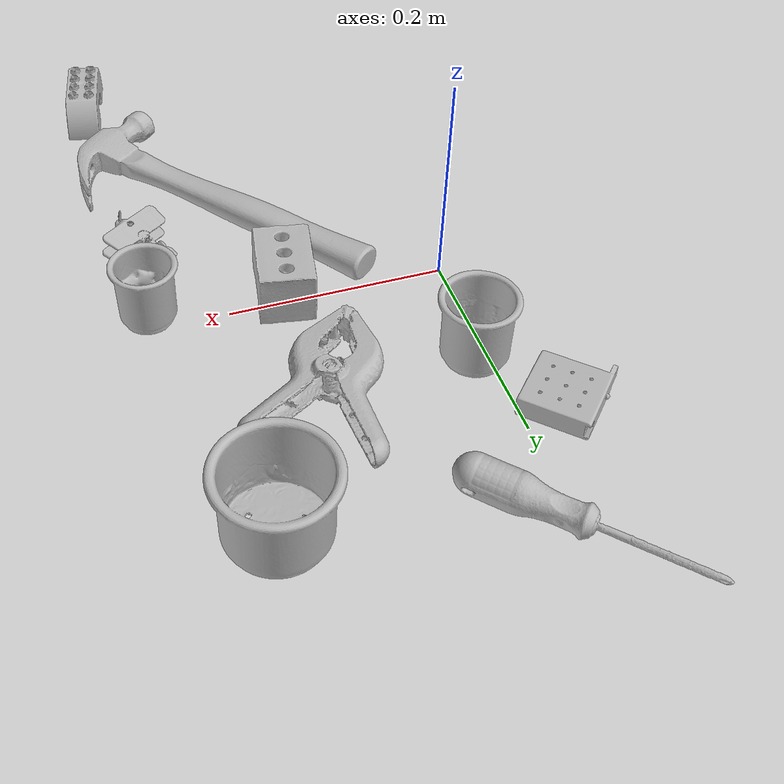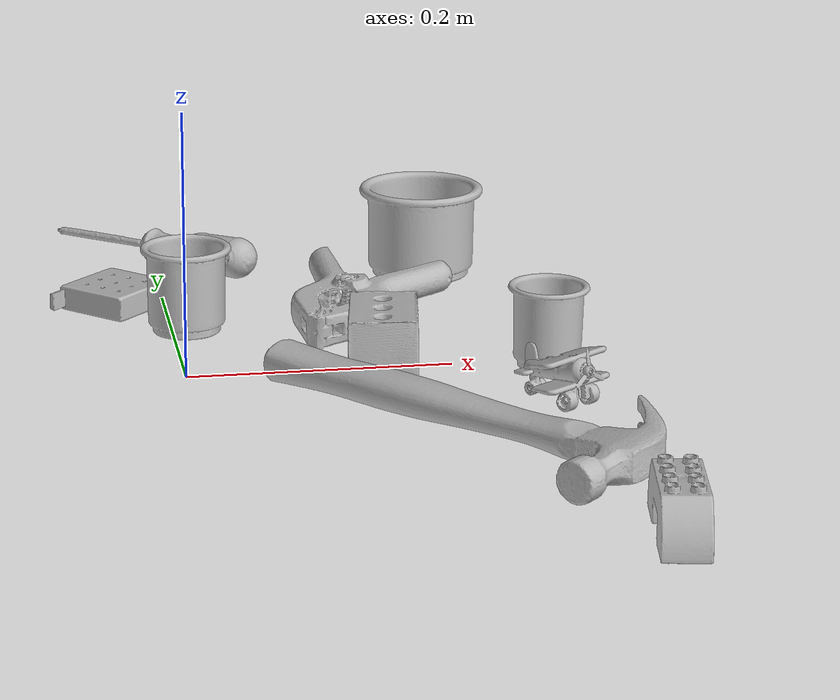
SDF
<sdf version="1.4">
  <world name="default">
    <light name="light1" type="point">
      <pose>0 0 1 0 0 0</pose>
      <diffuse>3 3 3 1</diffuse>
      <specular>3 3 3 1</specular>
    </light>
    <light name="light2" type="point">
      <pose>0 0.5 2 0 0 0</pose>
      <diffuse>1 1 1 1</diffuse>
      <specular>1 1 1 1</specular>
    </light>
    <light name="light3" type="point">
      <pose>0 0.5 2 0 0 0</pose>
      <diffuse>3 3 3 1</diffuse>
      <specular>3 3 3 1</specular>
    </light>
    <scene>
      <ambient>0.7 0.7 0.7</ambient>
    </scene>
    <model name="cup1">
      <link name="link_cup1">
        <collision name="default">
          <geometry>
            <mesh>
              <uri>model://j_cups/collision_meshes/collision.obj</uri>
              <scale>1.0 1.0 1.0</scale>
            </mesh>
          </geometry>
          <surface>
            <friction>
              <ode>
                <mu>0.5</mu>
                <mu2>0.5</mu2>
              </ode>
            </friction>
          <contact>
        <ode>
            <max_vel>0</max_vel>
            <min_depth>0.0001</min_depth>
            <kp>1e8</kp>
        </ode>
    </contact></surface>
        </collision>
        <visual name="default">
          <geometry>
            <mesh>
              <uri>model://j_cups/visual_meshes/visual.dae</uri>
              <scale>1.0 1.0 1.0</scale>
            </mesh>
          </geometry>
        </visual>
        <inertial>
          <mass>0.1112113818526268</mass>
          <pose>0.0006164852529764175 0.0005398975918069482 -0.0013479019980877638 0.030303955005909274 0.03757984422505388 0.4386955526072484</pose>
          <inertia>
            <ixx>0.00016329347</ixx>
            <iyy>0.00016499148</iyy>
            <izz>0.00018824349</izz>
            <ixy>0</ixy>
            <ixz>0</ixz>
            <iyz>0</iyz>
          </inertia>
        </inertial>
      </link>
      <pose>0.22156603634357452 0.24047210812568665 0.037988994270563126 1.1805086073197432e-09 -6.451120253084784e-07 -0.12066284009372619</pose>
    </model>
    <model name="cup2">
      <link name="link_cup2">
        <collision name="default">
          <geometry>
            <mesh>
              <uri>model://b_cups/collision_meshes/collision.obj</uri>
              <scale>1.0 1.0 1.0</scale>
            </mesh>
          </geometry>
          <surface>
            <friction>
              <ode>
                <mu>0.5</mu>
                <mu2>0.5</mu2>
              </ode>
            </friction>
          <contact>
        <ode>
            <max_vel>0</max_vel>
            <min_depth>0.0001</min_depth>
            <kp>1e8</kp>
        </ode>
    </contact></surface>
        </collision>
        <visual name="default">
          <geometry>
            <mesh>
              <uri>model://b_cups/visual_meshes/visual.dae</uri>
              <scale>1.0 1.0 1.0</scale>
            </mesh>
          </geometry>
        </visual>
        <inertial>
          <mass>0.040588438510894775</mass>
          <pose>0.0005182006862014532 0.001805859268642962 -0.001338181202299893 0.11356319114734177 0.03872522211554688 -0.34569586720892936</pose>
          <inertia>
            <ixx>2.6567977e-05</ixx>
            <iyy>2.6063572e-05</iyy>
            <izz>2.235645e-05</izz>
            <ixy>0</ixy>
            <ixz>0</ixz>
            <iyz>0</iyz>
          </inertia>
        </inertial>
      </link>
      <pose>0.26945269107818604 -0.015931304544210434 0.031996265053749084 -0.00762412243439389 -0.0038737189181310837 -2.607656302328686</pose>
    </model>
    <model name="cup3">
      <link name="link_cup3">
        <collision name="default">
          <geometry>
            <mesh>
              <uri>model://d_cups/collision_meshes/collision.obj</uri>
              <scale>1.0 1.0 1.0</scale>
            </mesh>
          </geometry>
          <surface>
            <friction>
              <ode>
                <mu>0.5</mu>
                <mu2>0.5</mu2>
              </ode>
            </friction>
          <contact>
        <ode>
            <max_vel>0</max_vel>
            <min_depth>0.0001</min_depth>
            <kp>1e8</kp>
        </ode>
    </contact></surface>
        </collision>
        <visual name="default">
          <geometry>
            <mesh>
              <uri>model://d_cups/visual_meshes/visual.dae</uri>
              <scale>1.0 1.0 1.0</scale>
            </mesh>
          </geometry>
        </visual>
        <inertial>
          <mass>0.030152590945363045</mass>
          <pose>0.000806804746389389 0.0019117394695058465 -0.0022666517179459333 0.2401234305416289 -0.2470973002062907 0.5942515272324471</pose>
          <inertia>
            <ixx>2.5244808e-05</ixx>
            <iyy>2.517175e-05</iyy>
            <izz>2.2850849e-05</izz>
            <ixy>0</ixy>
            <ixz>0</ixz>
            <iyz>0</iyz>
          </inertia>
        </inertial>
      </link>
      <pose>0.01142383273690939 0.11146356165409088 0.034659020602703094 -1.3889368527848353e-06 4.0450493877955086e-07 0.6492172084127887</pose>
    </model>
    <model name="toy1">
      <link name="link_toy1">
        <collision name="default">
          <geometry>
            <mesh>
              <uri>model://e_lego_duplo/collision_meshes/collision.obj</uri>
              <scale>1.0 1.0 1.0</scale>
            </mesh>
          </geometry>
          <surface>
            <friction>
              <ode>
                <mu>0.5</mu>
                <mu2>0.5</mu2>
              </ode>
            </friction>
          <contact>
        <ode>
            <max_vel>0</max_vel>
            <min_depth>0.0001</min_depth>
            <kp>1e8</kp>
        </ode>
    </contact></surface>
        </collision>
        <visual name="default">
          <geometry>
            <mesh>
              <uri>model://e_lego_duplo/visual_meshes/visual.dae</uri>
              <scale>1.0 1.0 1.0</scale>
            </mesh>
          </geometry>
        </visual>
        <inertial>
          <mass>0.09282131493091583</mass>
          <pose>0.0003256045747548342 0.00023485456767957658 0.0019521460635587573 -0.022567664257634346 -6.825452093688492e-05 -0.007625138047361518</pose>
          <inertia>
            <ixx>1.9356308e-05</ixx>
            <iyy>7.944328e-05</iyy>
            <izz>7.736177e-05</izz>
            <ixy>0</ixy>
            <ixz>0</ixz>
            <iyz>0</iyz>
          </inertia>
        </inertial>
      </link>
      <pose>0.27451255917549133 -0.3494749367237091 0.021808987483382225 -1.1028155597056378e-06 -1.2925988981980255e-08 1.3864014458516334</pose>
    </model>
    <model name="toy2">
      <link name="link_toy2">
        <collision name="default">
          <geometry>
            <mesh>
              <uri>model://nine_hole_peg_test/collision_meshes/collision.obj</uri>
              <scale>0.5 0.5 0.5</scale>
            </mesh>
          </geometry>
          <surface>
            <friction>
              <ode>
                <mu>0.5</mu>
                <mu2>0.5</mu2>
              </ode>
            </friction>
          <contact>
        <ode>
            <max_vel>0</max_vel>
            <min_depth>0.0001</min_depth>
            <kp>1e8</kp>
        </ode>
    </contact></surface>
        </collision>
        <visual name="default">
          <geometry>
            <mesh>
              <uri>model://nine_hole_peg_test/visual_meshes/visual.dae</uri>
              <scale>0.5 0.5 0.5</scale>
            </mesh>
          </geometry>
        </visual>
        <inertial>
          <mass>0.0661587193608284</mass>
          <pose>-0.002308693015947938 -0.0048238071613013744 1.3230345757619943e-05 -0.0014666794270044752 0.0007194176174711586 -0.6342418340283942</pose>
          <inertia>
            <ixx>2.5862508e-05</ixx>
            <iyy>2.4147552e-05</iyy>
            <izz>4.531874e-05</izz>
            <ixy>0</ixy>
            <ixz>0</ixz>
            <iyz>0</iyz>
          </inertia>
        </inertial>
      </link>
      <pose>-0.044541072100400925 0.18059895932674408 0.010385498404502869 -3.5087100239139524e-10 4.312344773070469e-09 2.3782673572276627</pose>
    </model>
    <model name="toy3">
      <link name="link_toy3">
        <collision name="default">
          <geometry>
            <mesh>
              <uri>model://foam_brick/collision_meshes/collision.obj</uri>
              <scale>1.0 1.0 1.0</scale>
            </mesh>
          </geometry>
          <surface>
            <friction>
              <ode>
                <mu>0.5</mu>
                <mu2>0.5</mu2>
              </ode>
            </friction>
          <contact>
        <ode>
            <max_vel>0</max_vel>
            <min_depth>0.0001</min_depth>
            <kp>1e8</kp>
        </ode>
    </contact></surface>
        </collision>
        <visual name="default">
          <geometry>
            <mesh>
              <uri>model://foam_brick/visual_meshes/visual.dae</uri>
              <scale>1.0 1.0 1.0</scale>
            </mesh>
          </geometry>
        </visual>
        <inertial>
          <mass>0.15239986777305603</mass>
          <pose>-0.00025224717683158815 0.0003458431747276336 -0.00025321010616607964 -0.29401565585717926 0.017274441097588973 -0.0007449887293440311</pose>
          <inertia>
            <ixx>6.6571105e-05</ixx>
            <iyy>0.00010628419</iyy>
            <izz>0.00010763494</izz>
            <ixy>0</ixy>
            <ixz>0</ixz>
            <iyz>0</iyz>
          </inertia>
        </inertial>
      </link>
      <pose>0.14557208120822906 -0.011279872618615627 0.025922806933522224 0.013373286919180369 0.004126649871307667 -1.7468326902190312</pose>
    </model>
    <model name="toy4">
      <link name="link_toy4">
        <collision name="default">
          <geometry>
            <mesh>
              <uri>model://a_toy_airplane/collision_meshes/collision.obj</uri>
              <scale>0.25 0.25 0.25</scale>
            </mesh>
          </geometry>
          <surface>
            <friction>
              <ode>
                <mu>0.5</mu>
                <mu2>0.5</mu2>
              </ode>
            </friction>
          <contact>
        <ode>
            <max_vel>0</max_vel>
            <min_depth>0.0001</min_depth>
            <kp>1e8</kp>
        </ode>
    </contact></surface>
        </collision>
        <visual name="default">
          <geometry>
            <mesh>
              <uri>model://a_toy_airplane/visual_meshes/visual.dae</uri>
              <scale>0.25 0.25 0.25</scale>
            </mesh>
          </geometry>
        </visual>
        <inertial>
          <mass>0.01630575954914093</mass>
          <pose>0.006291272584348917 -0.0009268299327231944 -0.0002990612993016839 -0.012016942866631759 -0.1466350865210375 0.004149072887705313</pose>
          <inertia>
            <ixx>3.7008767e-06</ixx>
            <iyy>5.392928e-06</iyy>
            <izz>6.314456e-06</izz>
            <ixy>0</ixy>
            <ixz>0</ixz>
            <iyz>0</iyz>
          </inertia>
        </inertial>
      </link>
      <pose>0.25941842794418335 -0.09288608282804489 0.023090368136763573 3.793622107920487e-05 9.463527215940854e-06 -0.9836909572833651</pose>
    </model>
    <model name="hardware1">
      <link name="link_hardware1">
        <collision name="default">
          <geometry>
            <mesh>
              <uri>model://phillips_screwdriver/collision_meshes/collision.obj</uri>
              <scale>1.0 1.0 1.0</scale>
            </mesh>
          </geometry>
          <surface>
            <friction>
              <ode>
                <mu>0.5</mu>
                <mu2>0.5</mu2>
              </ode>
            </friction>
          <contact>
        <ode>
            <max_vel>0</max_vel>
            <min_depth>0.0001</min_depth>
            <kp>1e8</kp>
        </ode>
    </contact></surface>
        </collision>
        <visual name="default">
          <geometry>
            <mesh>
              <uri>model://phillips_screwdriver/visual_meshes/visual.dae</uri>
              <scale>1.0 1.0 1.0</scale>
            </mesh>
          </geometry>
        </visual>
        <inertial>
          <mass>0.05757145583629608</mass>
          <pose>-0.04777182266116142 0.001036230125464499 -0.000455554953077808 -0.1572215307256514 0.005850991069928943 -0.0021567397451199392</pose>
          <inertia>
            <ixx>6.764056e-06</ixx>
            <iyy>8.480946e-05</iyy>
            <izz>8.4881525e-05</izz>
            <ixy>0</ixy>
            <ixz>0</ixz>
            <iyz>0</iyz>
          </inertia>
        </inertial>
      </link>
      <pose>0.004258725792169571 0.3060356676578522 0.015409654006361961 0.06561081971839573 0.037568056951235794 2.3666895627832103</pose>
    </model>
    <model name="hardware2">
      <link name="link_hardware2">
        <collision name="default">
          <geometry>
            <mesh>
              <uri>model://hammer/collision_meshes/collision.obj</uri>
              <scale>1.0 1.0 1.0</scale>
            </mesh>
          </geometry>
          <surface>
            <friction>
              <ode>
                <mu>0.5</mu>
                <mu2>0.5</mu2>
              </ode>
            </friction>
          <contact>
        <ode>
            <max_vel>0</max_vel>
            <min_depth>0.0001</min_depth>
            <kp>1e8</kp>
        </ode>
    </contact></surface>
        </collision>
        <visual name="default">
          <geometry>
            <mesh>
              <uri>model://hammer/visual_meshes/visual.dae</uri>
              <scale>1.0 1.0 1.0</scale>
            </mesh>
          </geometry>
        </visual>
        <inertial>
          <mass>0.19043192267417908</mass>
          <pose>0.00941577646881342 -0.011892358772456646 -0.0001235063245985657 0.023155672419862355 -0.004792164441448863 -0.012760315407460211</pose>
          <inertia>
            <ixx>8.15718e-05</ixx>
            <iyy>0.0022103586</iyy>
            <izz>0.002273686</izz>
            <ixy>0</ixy>
            <ixz>0</ixz>
            <iyz>0</iyz>
          </inertia>
        </inertial>
      </link>
      <pose>0.18877650797367096 -0.14210204780101776 0.016267746686935425 -0.005174630894547248 -0.0013811343150533363 -0.8792862598902782</pose>
    </model>
    <model name="hardware3">
      <link name="link_hardware3">
        <collision name="default">
          <geometry>
            <mesh>
              <uri>model://large_clamp/collision_meshes/collision.obj</uri>
              <scale>1.0 1.0 1.0</scale>
            </mesh>
          </geometry>
          <surface>
            <friction>
              <ode>
                <mu>0.5</mu>
                <mu2>0.5</mu2>
              </ode>
            </friction>
          <contact>
        <ode>
            <max_vel>0</max_vel>
            <min_depth>0.0001</min_depth>
            <kp>1e8</kp>
        </ode>
    </contact></surface>
        </collision>
        <visual name="default">
          <geometry>
            <mesh>
              <uri>model://large_clamp/visual_meshes/visual.dae</uri>
              <scale>1.0 1.0 1.0</scale>
            </mesh>
          </geometry>
        </visual>
        <inertial>
          <mass>0.18636001646518707</mass>
          <pose>0.006369354669004679 0.0003585688828025013 -0.0001839799078879878 -0.0021330740505354343 0.009671591251539349 0.02663317297682702</pose>
          <inertia>
            <ixx>0.0001644205</ixx>
            <iyy>0.00031224336</iyy>
            <izz>0.00045169977</izz>
            <ixy>0</ixy>
            <ixz>0</ixz>
            <iyz>0</iyz>
          </inertia>
        </inertial>
      </link>
      <pose>0.14288005232810974 0.11879217624664307 0.018504513427615166 -0.012231784742609641 0.046927859420121884 -2.0975878916665325</pose>
    </model>
  <physics type="ode">
      <max_contacts>50</max_contacts>
      <ode>
        <solver>
          <type>quick</type>
          <iters>75</iters>
        </solver>
        <constraints>
          <contact_max_correcting_vel>0</contact_max_correcting_vel>
          <contact_surface_layer>0</contact_surface_layer>
        </constraints>
      </ode>
    </physics></world>
</sdf>
